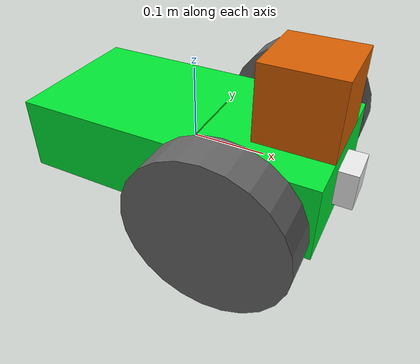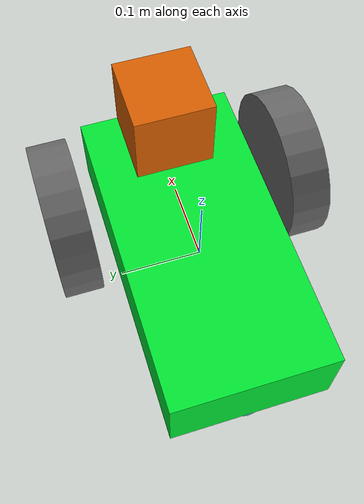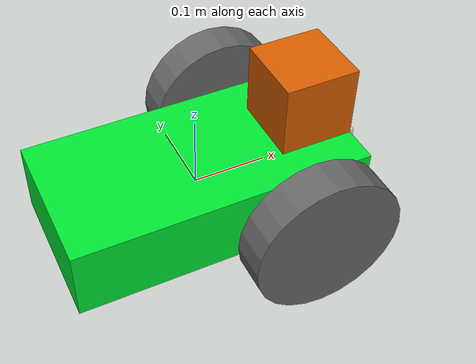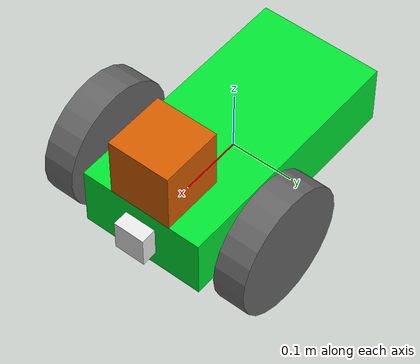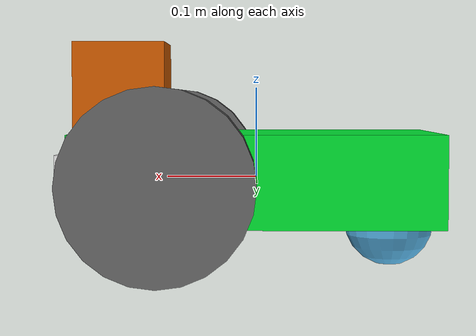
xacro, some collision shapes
<?xml version="1.0"?>
<robot name="myrobot" xmlns:xacro="http://www.ros.org/wiki/xacro">

  <!-- Properties -->
  <xacro:property name="cameraSize" value="0.05"/>
  <xacro:property name="cameraMass" value="0.1"/>

  <!-- Gazebo extensions -->
  <xacro:include filename="$(find my_robot)/urdf/robot.gazebo"/>

  <!-- Chassis -->
  <link name="chassis">
    <visual name="chassis_visual">
      <origin xyz="0 0 0" rpy="0 0 0"/>
      <geometry>
        <box size="0.4 0.2 0.1"/>
      </geometry>
      <material name="green">
        <color rgba="0 0.9 0.2 1"/>
      </material>
    </visual>

    <inertial>
      <mass value="10.0"/>
      <origin xyz="0.0 0 0.1" rpy="0 0 0"/>
      <inertia
          ixx="0.5" ixy="0" ixz="0"
          iyy="1.0" iyz="0"
          izz="0.1"/>
    </inertial>

    <collision name="chassis_collision">
      <geometry>
        <box size="0.4 0.2 0.1"/>
      </geometry>
    </collision>
  </link>

  <!-- Caster wheel -->
  <link name="caster">
    <collision name="caster_collision">
      <origin xyz="0 0 0" rpy="0 0 0"/>
      <geometry>
        <sphere radius="0.05"/>
      </geometry>
      <surface>
        <friction>
          <ode>
            <mu>0</mu>
            <mu2>0</mu2>
            <slip1>1.0</slip1>
            <slip2>1.0</slip2>
          </ode>
        </friction>
      </surface>
    </collision>

    <visual name="caster_visual">
      <origin xyz="0 0 0" rpy="0 0 0"/>
      <geometry>
        <sphere radius="0.05"/>
      </geometry>
    </visual>
  </link>

  <!-- Caster joint -->
  <joint name="joint_caster" type="fixed">
    <parent link="chassis"/>
    <child link="caster"/>
    <origin xyz="-0.15 0 -0.05" rpy="0 0 0"/>
  </joint>

  <!-- Left wheel -->
  <link name="left_wheel">
    <collision name="left_wheel_collision">
      <origin xyz="0 0 0" rpy="0 1.5707 1.5707"/>
      <geometry>
        <cylinder radius="0.1" length="0.05"/>
      </geometry>
    </collision>

    <visual name="left_wheel_visual">
      <origin xyz="0 0 0" rpy="0 1.5707 1.5707"/>
      <geometry>
        <cylinder radius="0.1" length="0.05"/>
      </geometry>
      <material name="gray">
        <color rgba="0.4 0.4 0.4 1"/>
      </material>
    </visual>

    <inertial>
      <origin xyz="0 0 0" rpy="0 1.5707 1.5707"/>
      <mass value="5"/>
      <inertia
        ixx="1.0" ixy="0.0" ixz="0.0"
        iyy="1.0" iyz="0.0"
        izz="1.0"/>
    </inertial>
  </link>

  <!-- Right wheel -->
  <link name="right_wheel">
    <collision name="right_wheel_collision">
      <origin xyz="0 0 0" rpy="0 1.5707 1.5707"/>
      <geometry>
        <cylinder radius="0.1" length="0.05"/>
      </geometry>
    </collision>

    <visual name="right_wheel_visual">
      <origin xyz="0 0 0" rpy="0 1.5707 1.5707"/>
      <geometry>
        <cylinder radius="0.1" length="0.05"/>
      </geometry>
      <material name="gray">
        <color rgba="0.4 0.4 0.4 1"/>
      </material>
    </visual>

    <inertial>
      <origin xyz="0 0 0" rpy="0 1.5707 1.5707"/>
      <mass value="5"/>
      <inertia
        ixx="1.0" ixy="0.0" ixz="0.0"
        iyy="1.0" iyz="0.0"
        izz="1.0"/>
    </inertial>
  </link>

  <!-- Left wheel joint -->
  <joint type="continuous" name="left_wheel_hinge">
    <origin xyz="0.1 0.15 0" rpy="0 0 0"/>
    <child link="left_wheel"/>
    <parent link="chassis"/>
    <axis xyz="0 1 0" rpy="0 0 0"/>
    <limit effort="100" velocity="100"/>
    <joint_properties damping="0.0" friction="0.0"/>
  </joint>

  <!-- Right wheel joint -->
  <joint type="continuous" name="right_wheel_hinge">
    <origin xyz="0.1 -0.15 0" rpy="0 0 0"/>
    <child link="right_wheel"/>
    <parent link="chassis"/>
    <axis xyz="0 1 0" rpy="0 0 0"/>
    <limit effort="100" velocity="100"/>
    <joint_properties damping="0.0" friction="0.0"/>
  </joint>

  <!-- Camera link -->
  <link name="camera">
    <collision>
      <origin xyz="0 0 0" rpy="0 0 0"/>
      <geometry>
        <box size="${cameraSize} ${cameraSize} ${cameraSize}"/>
      </geometry>
    </collision>

    <visual>
      <origin xyz="0 0 0" rpy="0 0 0"/>
      <geometry>
        <box size="${cameraSize} ${cameraSize} ${cameraSize}"/>
      </geometry>
      <material name="white"/>
    </visual>

    <inertial>
      <mass value="${cameraMass}"/>
      <origin xyz="0 0 0" rpy="0 0 0"/>
      <inertia ixx="1e-6" ixy="0" ixz="0" iyy="1e-6" iyz="0" izz="1e-6"/>
    </inertial>
  </link>

  <!-- Camera joint -->
  <joint name="camera_joint" type="fixed">
    <axis xyz="0 1 0"/>
    <origin xyz="0.2 0 0" rpy="0 0 0"/>
    <parent link="chassis"/>
    <child link="camera"/>
  </joint>

  <!-- Hokuyo joint -->
  <joint name="hokuyo_joint" type="fixed">
    <axis xyz="0 1 0"/>
    <origin xyz="0.15 0 0.1" rpy="0 0 0"/>
    <parent link="chassis"/>
    <child link="hokuyo"/>
  </joint>

  <!-- Hokuyo Laser -->
  <link name="hokuyo">
    <collision>
      <origin xyz="0 0 0" rpy="0 0 0"/>
      <geometry>
        <box size="0.1 0.1 0.1"/>
      </geometry>
    </collision>

    <visual>
      <origin xyz="0 0 0" rpy="0 0 0"/>
      <geometry>
        <mesh filename="file://$(find my_robot)/meshes/hokuyo.dae"/>
      </geometry>
    </visual>

    <inertial>
      <mass value="1e-5"/>
      <origin xyz="0 0 0" rpy="0 0 0"/>
      <inertia ixx="1e-6" ixy="0" ixz="0" iyy="1e-6" iyz="0" izz="1e-6"/>
    </inertial>
  </link>

</robot>

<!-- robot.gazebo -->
<!-- Gazebo extensions for myrobot -->

<!-- Base Link -->
<gazebo reference="chassis">
  <material>Gazebo/Green</material>
</gazebo>

<!-- Caster -->
<gazebo reference="caster">
  <mu1>0.2</mu1>
  <mu2>0.2</mu2>
  <material>Gazebo/Grey</material>
</gazebo>

<!-- Right wheel -->
<gazebo reference="right_wheel">
  <mu1>0.2</mu1>
  <mu2>0.2</mu2>
  <material>Gazebo/Grey</material>
</gazebo>

<!-- Left wheel -->
<gazebo reference="left_wheel">
  <mu1>0.2</mu1>
  <mu2>0.2</mu2>
  <material>Gazebo/Grey</material>
</gazebo>

<!-- Camera (visual + sensor + plugin) -->
<gazebo reference="camera">
  <mu1>0.1</mu1>
  <mu2>0.1</mu2>
  <material>Gazebo/White</material>

  <sensor type="camera" name="camera1">
    <update_rate>30.0</update_rate>
    <camera name="head">
      <horizontal_fov>1.3962634</horizontal_fov>
      <image>
        <width>800</width>
        <height>800</height>
        <format>R8G8B8</format>
      </image>
      <clip>
        <near>0.02</near>
        <far>300</far>
      </clip>
    </camera>
    <plugin name="camera_controller" filename="libgazebo_ros_camera.so">
      <alwaysOn>true</alwaysOn>
      <updateRate>0.0</updateRate>
      <cameraName>my_robot/camera1</cameraName>
      <imageTopicName>image_raw</imageTopicName>
      <cameraInfoTopicName>camera_info</cameraInfoTopicName>
      <!-- خلي الفريم يطابق اسم اللينك في xacro -->
      <frameName>camera</frameName>
      <hackBaseline>0.07</hackBaseline>
      <distortionK1>0.0</distortionK1>
      <distortionK2>0.0</distortionK2>
      <distortionK3>0.0</distortionK3>
      <distortionT1>0.0</distortionT1>
      <distortionT2>0.0</distortionT2>
    </plugin>
  </sensor>
</gazebo>

<!-- Differential Drive Controller for 2-wheel-robot -->
<gazebo>
  <plugin name="diff_drive" filename="libgazebo_ros_diff_drive.so">

    <!-- Wheel Information -->
    <left_joint>left_wheel_hinge</left_joint>
    <right_joint>right_wheel_hinge</right_joint>

    <!-- من الـxacro، المسافة بين العجلتين = 0.3 والقطر = 0.2 -->
    <wheel_separation>0.3</wheel_separation>
    <wheel_diameter>0.2</wheel_diameter>

    <!-- Limits -->
    <max_wheel_torque>200</max_wheel_torque>
    <max_wheel_acceleration>10.0</max_wheel_acceleration>

    <!-- Output -->
    <odometry_frame>odom</odometry_frame>
    <robot_base_frame>chassis</robot_base_frame>

    <publish_odom>true</publish_odom>
    <publish_odom_tf>true</publish_odom_tf>
    <publish_wheel_tf>true</publish_wheel_tf>
  </plugin>
</gazebo>

<!-- Hokuyo laser -->
<gazebo reference="hokuyo">
  <sensor name="laser" type="ray">
    <pose>0 0 0 0 0 0</pose>
    <visualize>true</visualize>
    <update_rate>20</update_rate>
    <ray>
      <scan>
        <horizontal>
          <samples>360</samples>
          <min_angle>-1.57</min_angle>
          <max_angle>1.57</max_angle>
        </horizontal>
      </scan>
      <range>
        <min>0.2</min>
        <max>12</max>
      </range>
    </ray>
    <plugin name="laser_controller" filename="libgazebo_ros_ray_sensor.so">
      <ros>
        <argument>~/out:=scan</argument>
      </ros>
      <output_type>sensor_msgs/LaserScan</output_type>
      <frame_name>hokuyo</frame_name>
    </plugin>
  </sensor>
</gazebo>
